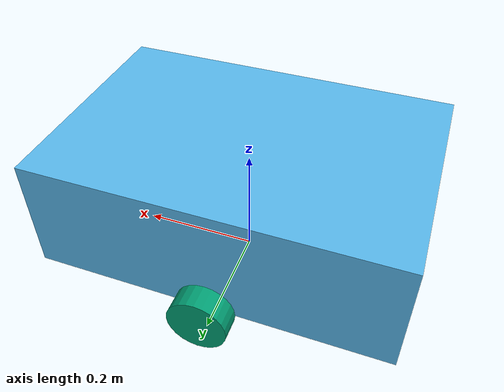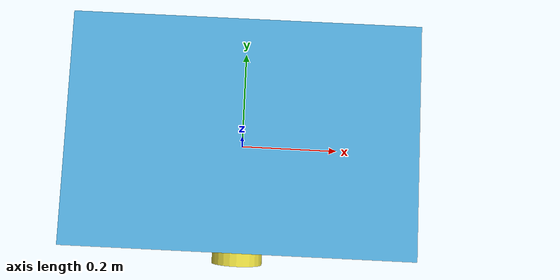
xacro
<?xml version="1.0"?>
<robot xmlns:xacro="http://www.ros.org/wiki/xacro" name="mini_robot">
  <xacro:include filename="mini_robot_wheel.xacro" />

  <xacro:property name="base_length" value="0.6" />
  <xacro:property name="base_width" value="0.4" />
  <xacro:property name="base_height" value="0.2" />
  <xacro:property name="wheel_radius" value="0.05" />
  <xacro:property name="wheel_width" value="0.04" />
  <xacro:property name="wheel_y" value="${base_width / 2 + wheel_width / 2}" />
  <xacro:property name="wheel_z" value="${-base_height / 2}" />
  <link name="base_footprint" />

  <joint
    name="base_footprint_joint"
    type="fixed">
    <parent link="base_footprint" />
    <child link="base_link" />
    <origin
      xyz="0 0 ${base_height / 2 + wheel_radius}"
      rpy="0 0 0" />
  </joint>

  <link name="base_link">
    <visual>
      <geometry>
        <box size="${base_length} ${base_width} ${base_height}" />
      </geometry>
    </visual>
  </link>

  <xacro:wheel prefix="left" x_pos="0" y_pos="${wheel_y}" z_pos="${wheel_z}"
    wheel_radius="${wheel_radius}" wheel_width="${wheel_width}" />
  <xacro:wheel prefix="right" x_pos="0" y_pos="${-wheel_y}" z_pos="${wheel_z}"
    wheel_radius="${wheel_radius}" wheel_width="${wheel_width}" />

  <ros2_control name="MiniRobotSystem" type="system">
    <hardware>
      <plugin>mock_components/GenericSystem</plugin>
      <param name="calculate_dynamics">true</param>
    </hardware>

    <joint name="left_wheel_joint">
      <command_interface name="velocity" />
      <state_interface name="position" />
      <state_interface name="velocity" />
    </joint>

    <joint name="right_wheel_joint">
      <command_interface name="velocity" />
      <state_interface name="position" />
      <state_interface name="velocity" />
    </joint>

  </ros2_control>

</robot>

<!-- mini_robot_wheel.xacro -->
<robot xmlns:xacro="http://www.ros.org/wiki/xacro" name="mini_robot_wheel">
  <xacro:macro name="wheel" params="prefix x_pos y_pos z_pos wheel_radius wheel_width">
    <link name="${prefix}_wheel_link">
      <visual>
        <origin xyz="0 0 0" rpy="${pi/2} 0 0" />
        <geometry>
          <cylinder radius="${wheel_radius}" length="${wheel_width}" />
        </geometry>
      </visual>
    </link>
    <joint name="${prefix}_wheel_joint" type="continuous">
      <parent link="base_link" />
      <child link="${prefix}_wheel_link" />
      <origin xyz="${x_pos} ${y_pos} ${z_pos}" rpy="0 0 0" />
      <axis xyz="0 1 0" />
    </joint>
  </xacro:macro>
</robot>
